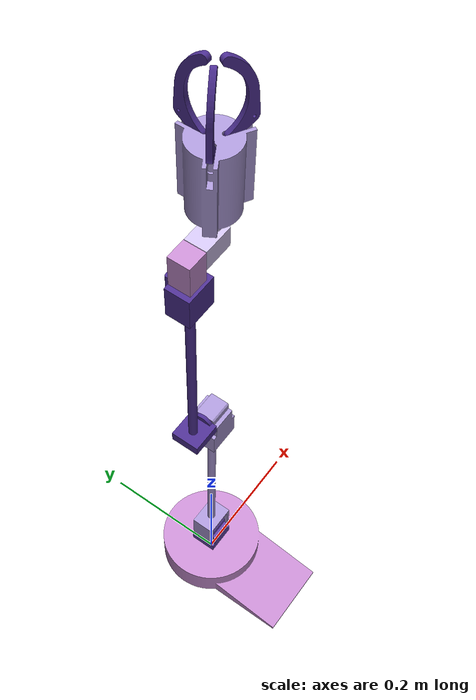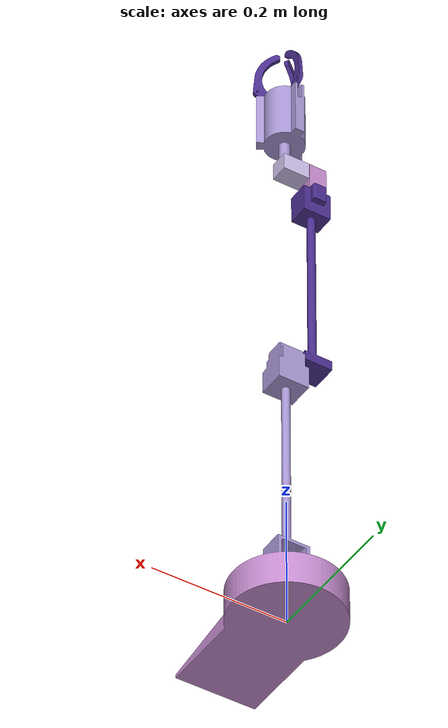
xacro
<?xml version="1.0"?>
<robot xmlns:xacro="http://www.ros.org/wiki/xacro" name="gripperbot">
    <xacro:arg name="initial_positions_file" default="initial_positions.yaml" />

    <!-- Import gripperbot urdf file -->
    <xacro:include filename="$(find gripperbot_description)/urdf/gripperbot.urdf.xacro" />

    <!-- Import control_xacro -->
    <xacro:include filename="gripperbot.ros2_control.xacro" />

    <xacro:gripperbot_ros2_control name="FakeSystem" initial_positions_file="$(arg initial_positions_file)"/>

</robot>

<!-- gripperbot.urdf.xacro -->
<!-- Generated using onshape-to-robot -->
<!-- Onshape document_id: 862e8c6c3191e2050c2f0c77 -->

<robot name="gripperbot" xmlns:xacro="http://ros.org/wiki/xacro">

    <xacro:include filename="modules/arm.xacro" />
    <xacro:include filename="modules/gripper.xacro" />

    <!-- GOOD PRACTICE TO PUT THE JOINTS BETWEEN ARM AND GRIPPER HERE-->
    <!-- Joint from wrist3_tool_link to gripper_body_link -->
    <joint name="gripper_to_arm_joint" type="continuous">
        <origin xyz="-4.34174e-15 -0.0145 0.028" rpy="-1.5708 -1.5708 0"/>
        <parent link="wrist3_tool_link"/>
        <child link="gripper_body_link"/>
        <axis xyz="0 0 1"/>
        <limit effort="100" velocity="100"/>
    </joint>

</robot>

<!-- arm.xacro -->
<!-- Generated using onshape-to-robot -->
<!-- Onshape document_id: 862e8c6c3191e2050c2f0c77 -->

<robot xmlns:xacro="http://ros.org/wiki/xacro">

<!-- ============================================ LINKS ================================================ -->

 <!-- Link base_link -->
  <link name="base_link">
    <inertial>
      <origin xyz="1.14227e-09 -0.0149262 0.0224093" rpy="0 0 0"/>
      <mass value="8.03176"/>
      <inertia ixx="0.0250449" ixy="-3.29178e-09" ixz="-4.24446e-10" iyy="0.0142937" iyz="-0.00185524" izz="0.0358871"/>
    </inertial>
    <visual>
      <origin xyz="0 0 0" rpy="0 -0 0"/>
      <geometry>
        <mesh filename="package://gripperbot_description/assets/arm/base_link.stl"/>
      </geometry>
      <material name="base_link_material">
        <color rgba="0.764706 0.545098 0.803922 1"/>
      </material>
    </visual>
    <collision>
      <origin xyz="0 0 0" rpy="0 -0 0"/>
      <geometry>
        <mesh filename="package://gripperbot_description/assets/arm/base_link.stl"/>
      </geometry>
    </collision>
  </link>
  <!-- END Link base_link -->

  <!-- Link shoulder_link -->
  <link name="shoulder_link">
    <inertial>
      <origin xyz="6.41216e-19 -1.66263e-18 -0.0210225" rpy="0 0 0"/>
      <mass value="0.186823"/>
      <inertia ixx="5.6668e-05" ixy="8.77202e-21" ixz="3.67806e-24" iyy="5.84165e-05" iyz="1.13905e-23" izz="4.78827e-05"/>
    </inertial>
    <visual>
      <origin xyz="3.85186e-34 0 -6.93889e-18" rpy="-3.14159 -3.51796e-20 8.32667e-17"/>
      <geometry>
        <mesh filename="package://gripperbot_description/assets/arm/shoulder_link.stl"/>
      </geometry>
      <material name="shoulder_link_material">
        <color rgba="0.368627 0.25098 0.643137 1"/>
      </material>
    </visual>
    <collision>
      <origin xyz="3.85186e-34 0 -6.93889e-18" rpy="-3.14159 -3.51796e-20 8.32667e-17"/>
      <geometry>
        <mesh filename="package://gripperbot_description/assets/arm/shoulder_link.stl"/>
      </geometry>
    </collision>
  </link>
  <!-- END Link shoulder_link -->

  <!-- Link upperarm_link -->
  <link name="upperarm_link">
    <inertial>
      <origin xyz="-3.93686e-05 0.101925 0.019" rpy="0 0 0"/>
      <mass value="0.158267"/>
      <inertia ixx="0.00150665" ixy="5.68203e-07" ixz="2.2488e-19" iyy="3.55793e-05" iyz="-3.04272e-19" izz="0.00148737"/>
    </inertial>
    <visual>
      <origin xyz="-1.236e-05 0.032 0.019" rpy="-2.19641 -1.57079 0.626"/>
      <geometry>
        <mesh filename="package://gripperbot_description/assets/arm/upperarm_link.stl"/>
      </geometry>
      <material name="upperarm_link_material">
        <color rgba="0.654902 0.584314 0.823529 1"/>
      </material>
    </visual>
    <collision>
      <origin xyz="-1.236e-05 0.032 0.019" rpy="-2.19641 -1.57079 0.626"/>
      <geometry>
        <mesh filename="package://gripperbot_description/assets/arm/upperarm_link.stl"/>
      </geometry>
    </collision>
  </link>
  <!-- END Link upperarm_link -->

  <!-- Link elbow_link -->
  <link name="elbow_link">
    <inertial>
      <origin xyz="-5.48603e-05 2.19372e-05 -0.0299903" rpy="0 0 0"/>
      <mass value="0.298533"/>
      <inertia ixx="0.00014186" ixy="6.3472e-09" ixz="-8.16051e-07" iyy="0.000147003" iyz="2.05859e-07" izz="8.21563e-05"/>
    </inertial>
    <visual>
      <origin xyz="8.69633e-19 3.56431e-18 1.66533e-16" rpy="3.14159 2.42999e-17 -2.41063e-17"/>
      <geometry>
        <mesh filename="package://gripperbot_description/assets/arm/elbow_link.stl"/>
      </geometry>
      <material name="elbow_link_material">
        <color rgba="0.654902 0.584314 0.823529 1"/>
      </material>
    </visual>
    <collision>
      <origin xyz="8.69633e-19 3.56431e-18 1.66533e-16" rpy="3.14159 2.42999e-17 -2.41063e-17"/>
      <geometry>
        <mesh filename="package://gripperbot_description/assets/arm/elbow_link.stl"/>
      </geometry>
    </collision>
  </link>
  <!-- END Link elbow_link -->

  <!-- Link forearm_link -->
  <link name="forearm_link">
    <inertial>
      <origin xyz="8.83279e-17 -0.0729009 0.0208966" rpy="0 0 0"/>
      <mass value="0.158134"/>
      <inertia ixx="0.00123935" ixy="-2.79266e-20" ixz="3.4357e-19" iyy="2.32886e-05" iyz="1.84844e-05" izz="0.00123694"/>
    </inertial>
    <visual>
      <origin xyz="8.4622e-17 3.33067e-16 1.76942e-16" rpy="1.5708 1.5708 0"/>
      <geometry>
        <mesh filename="package://gripperbot_description/assets/arm/forearm_link.stl"/>
      </geometry>
      <material name="forearm_link_material">
        <color rgba="0.294118 0.180392 0.560784 1"/>
      </material>
    </visual>
    <collision>
      <origin xyz="8.4622e-17 3.33067e-16 1.76942e-16" rpy="1.5708 1.5708 0"/>
      <geometry>
        <mesh filename="package://gripperbot_description/assets/arm/forearm_link.stl"/>
      </geometry>
    </collision>
  </link>
  <!-- END Link forearm_link -->

  <!-- Link wrist1_link -->
  <link name="wrist1_link">
    <inertial>
      <origin xyz="8.41318e-17 -0.00149769 -0.02306" rpy="0 0 0"/>
      <mass value="0.182387"/>
      <inertia ixx="4.96843e-05" ixy="3.37872e-20" ixz="2.50108e-20" iyy="5.51546e-05" iyz="-2.74955e-06" izz="4.37886e-05"/>
    </inertial>
    <visual>
      <origin xyz="1.04083e-16 4.08473e-17 1.11022e-16" rpy="3.14159 -3.28226e-16 3.20794e-16"/>
      <geometry>
        <mesh filename="package://gripperbot_description/assets/arm/wrist1_link.stl"/>
      </geometry>
      <material name="wrist1_link_material">
        <color rgba="0.294118 0.180392 0.560784 1"/>
      </material>
    </visual>
    <collision>
      <origin xyz="1.04083e-16 4.08473e-17 1.11022e-16" rpy="3.14159 -3.28226e-16 3.20794e-16"/>
      <geometry>
        <mesh filename="package://gripperbot_description/assets/arm/wrist1_link.stl"/>
      </geometry>
    </collision>
  </link>
  <!-- END Link wrist1_link -->

  <!-- Link wrist2_link -->
  <link name="wrist2_link">
    <inertial>
      <origin xyz="-0.00251186 6.71599e-18 0.0190119" rpy="0 0 0"/>
      <mass value="0.0859157"/>
      <inertia ixx="1.77917e-05" ixy="1.82916e-19" ixz="-2.99993e-07" iyy="1.77246e-05" iyz="1.27323e-20" izz="1.1138e-05"/>
    </inertial>
    <visual>
      <origin xyz="1.249e-16 0.0075 -0.001" rpy="-3.14159 -1.21316e-15 1.47004e-15"/>
      <geometry>
        <mesh filename="package://gripperbot_description/assets/arm/wrist2_link.stl"/>
      </geometry>
      <material name="wrist2_link_material">
        <color rgba="0.764706 0.545098 0.803922 1"/>
      </material>
    </visual>
    <collision>
      <origin xyz="1.249e-16 0.0075 -0.001" rpy="-3.14159 -1.21316e-15 1.47004e-15"/>
      <geometry>
        <mesh filename="package://gripperbot_description/assets/arm/wrist2_link.stl"/>
      </geometry>
    </collision>
  </link>
  <!-- END Link wrist2_link -->

  <!-- Link wrist3_tool_link -->
  <link name="wrist3_tool_link">
    <inertial>
      <origin xyz="1.23254e-18 0.00173675 0.0180397" rpy="0 0 0"/>
      <mass value="0.0818333"/>
      <inertia ixx="1.58518e-05" ixy="1.1494e-19" ixz="4.04749e-20" iyy="1.58958e-05" iyz="2.99003e-07" izz="1.06276e-05"/>
    </inertial>
    <visual>
      <origin xyz="-0.0075 0.029 -0.013" rpy="-1.5708 -1.5708 0"/>
      <geometry>
        <mesh filename="package://gripperbot_description/assets/arm/wrist3_link.stl"/>
      </geometry>
      <material name="wrist3_link_material">
        <color rgba="0.8 0.74902 0.913725 1"/>
      </material>
    </visual>
    <collision>
      <origin xyz="-0.0075 0.029 -0.013" rpy="-1.5708 -1.5708 0"/>
      <geometry>
        <mesh filename="package://gripperbot_description/assets/arm/wrist3_link.stl"/>
      </geometry>
    </collision>
  </link>
  <!-- END Link wrist3_tool_link -->

<!-- =======================================  JOINTS ============================================= -->

 <!-- Joint from wrist2_link to wrist3_tool_link -->
  <joint name="wrist2_joint" type="revolute">
    <origin xyz="0.01375 2.45572e-17 0.028" rpy="-1.5708 7.43214e-16 -1.5708"/>
    <parent link="wrist2_link"/>
    <child link="wrist3_tool_link"/>
    <axis xyz="0 0 1"/>
    <limit effort="100" velocity="100" lower="-2.00" upper="2.00"/>
  </joint>

  <!-- Joint from wrist1_link to wrist2_link -->
  <joint name="wrist1_joint" type="continuous">
    <origin xyz="8.32667e-17 4.82199e-17 -0.049" rpy="3.14159 -2.66993e-16 3.20794e-16"/>
    <parent link="wrist1_link"/>
    <child link="wrist2_link"/>
    <axis xyz="0 0 1"/>
    <limit effort="100" velocity="100"/>
  </joint>

  <!-- Joint from forearm_link to wrist1_link -->
  <joint name="forearm_to_wrist_joint" type="fixed">
    <origin xyz="8.31583e-17 -0.2685 0.0225" rpy="-1.5708 1.5708 0"/>
    <parent link="forearm_link"/>
    <child link="wrist1_link"/>
    <axis xyz="0 0 1"/>
    <limit effort="100" velocity="100"/>
  </joint>

  <!-- Joint from elbow_link to forearm_link -->
  <joint name="elbow_joint" type="revolute">
    <origin xyz="-0.019 0.00019993 -0.05625" rpy="1.5708 -1.72647e-17 -1.57079"/>
    <parent link="elbow_link"/>
    <child link="forearm_link"/>
    <axis xyz="0 0 1"/>
    <limit effort="100" velocity="100" lower="-3" upper="3"/>
  </joint>

  <!-- Joint from upperarm_link to elbow_link -->
  <joint name="upperarm_to_elbow_joint" type="fixed">
    <origin xyz="-0.000118579 0.307 0.019" rpy="1.5708 -1.57079 0.000386251"/>
    <parent link="upperarm_link"/>
    <child link="elbow_link"/>
    <axis xyz="0 0 1"/>
    <limit effort="100" velocity="100"/>
  </joint>

  <!-- Joint from shoulder_link to upperarm_link -->
  <joint name="shoulder_joint" type="revolute">
    <origin xyz="-0.019 -6.52428e-18 -0.03625" rpy="-1.5708 1.07155e-19 -1.5708"/>
    <parent link="shoulder_link"/>
    <child link="upperarm_link"/>
    <axis xyz="0 0 1"/>
    <limit effort="100" velocity="100" lower="-1.5708" upper="1.5708"/>
  </joint>

  <!-- Joint from base_link to shoulder_link -->
  <joint name="waist_joint" type="continuous">
    <origin xyz="0 4.89859e-18 0.0495" rpy="3.14159 -0 0"/>
    <parent link="base_link"/>
    <child link="shoulder_link"/>
    <axis xyz="0 0 1"/>
    <limit effort="100" velocity="100"/>
  </joint>

</robot>

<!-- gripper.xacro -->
<!-- Generated using onshape-to-robot -->
<!-- Onshape https://cad.onshape.com/documents/862e8c6c3191e2050c2f0c77/w/c0f9f357af393f0842a7b7ce/e/4f23dfc971c8123d3ac0b54e -->

<robot xmlns:xacro="http://ros.org/wiki/xacro">

<!-- ======================================= LINKS ============================================ -->

  <!-- Link gripper_body_link -->
  <link name="gripper_body_link">
    <inertial>
      <origin xyz="-4.05275e-10 8.37288e-10 -0.0687623" rpy="0 0 0"/>
      <mass value="0.125198"/>
      <inertia ixx="0.00016856" ixy="-6.41053e-13" ixz="-1.50248e-12" iyy="0.00016856" iyz="4.56882e-12" izz="9.25176e-05"/>
    </inertial>
    <visual>
      <origin xyz="0 -0.1361 -0.054" rpy="3.14159 -1.51858e-31 -7.13552e-32"/>
      <geometry>
        <mesh filename="package://gripperbot_description/assets/gripper/gripper_body_link.stl"/>
      </geometry>
      <material name="gripper_body_link_material">
        <color rgba="0.654902 0.584314 0.823529 1"/>
      </material>
    </visual>
    <collision>
      <origin xyz="0 -0.1361 -0.054" rpy="3.14159 -1.51858e-31 -7.13552e-32"/>
      <geometry>
        <mesh filename="package://gripperbot_description/assets/gripper/gripper_body_link.stl"/>
      </geometry>
    </collision>
  </link>
  <!-- END Link gripper_body_link -->

  <!-- Link gripper_arm_link_1 -->
  <link name="gripper_arm_link_1">
    <inertial>
      <origin xyz="0.0329865 0.0247847 0.003" rpy="0 0 0"/>
      <mass value="0.00753434"/>
      <inertia ixx="4.33594e-06" ixy="-2.13713e-06" ixz="3.39419e-15" iyy="1.76823e-06" iyz="1.34526e-14" izz="6.05896e-06"/>
    </inertial>
    <visual>
      <origin xyz="0 0 -0.004" rpy="-4.80254e-18 -2.92476e-18 5.32903e-17"/>
      <geometry>
        <mesh filename="package://gripperbot_description/assets/gripper/gripper_arm_link.stl"/>
      </geometry>
      <material name="gripper_arm_link_1_material">
        <color rgba="0.294118 0.180392 0.560784 1"/>
      </material>
    </visual>
    <collision>
      <origin xyz="0 0 -0.004" rpy="-4.80254e-18 -2.92476e-18 5.32903e-17"/>
      <geometry>
        <mesh filename="package://gripperbot_description/assets/gripper/gripper_arm_link.stl"/>
      </geometry>
    </collision>
  </link>
  <!-- END Link gripper_arm_link_1 -->

  <!-- Link gripper_arm_link_2 -->
  <link name="gripper_arm_link_2">
    <inertial>
      <origin xyz="0.0329865 0.0247847 -0.003" rpy="0 0 0"/>
      <mass value="0.00753434"/>
      <inertia ixx="4.33594e-06" ixy="-2.13713e-06" ixz="3.39419e-15" iyy="1.76823e-06" iyz="1.34526e-14" izz="6.05896e-06"/>
    </inertial>
    <visual>
      <origin xyz="0 -1.11022e-16 -0.01" rpy="6.05967e-17 6.39472e-17 -1.15544e-17"/>
      <geometry>
        <mesh filename="package://gripperbot_description/assets/gripper/gripper_arm_link.stl"/>
      </geometry>
      <material name="gripper_arm_link_2_material">
        <color rgba="0.294118 0.180392 0.560784 1"/>
      </material>
    </visual>
    <collision>
      <origin xyz="0 -1.11022e-16 -0.01" rpy="6.05967e-17 6.39472e-17 -1.15544e-17"/>
      <geometry>
        <mesh filename="package://gripperbot_description/assets/gripper/gripper_arm_link.stl"/>
      </geometry>
    </collision>
  </link>
  <!-- END Link gripper_arm_link_2 -->

   <!-- Link gripper_arm_link_3 -->
  <link name="gripper_arm_link_3">
    <inertial>
      <origin xyz="0.0329865 0.0247847 -0.003" rpy="0 0 0"/>
      <mass value="0.00753434"/>
      <inertia ixx="4.33594e-06" ixy="-2.13713e-06" ixz="3.39419e-15" iyy="1.76823e-06" iyz="1.34526e-14" izz="6.05896e-06"/>
    </inertial>
    <visual>
      <origin xyz="1.11022e-16 0 -0.01" rpy="2.20238e-31 9.78201e-31 -6.16684e-17"/>
      <geometry>
        <mesh filename="package://gripperbot_description/assets/gripper/gripper_arm_link.stl"/>
      </geometry>
      <material name="gripper_arm_link_3_material">
        <color rgba="0.294118 0.180392 0.560784 1"/>
      </material>
    </visual>
    <collision>
      <origin xyz="1.11022e-16 0 -0.01" rpy="2.20238e-31 9.78201e-31 -6.16684e-17"/>
      <geometry>
        <mesh filename="package://gripperbot_description/assets/gripper/gripper_arm_link.stl"/>
      </geometry>
    </collision>
  </link>
  <!-- END Link gripper_arm_link_3 -->

<!-- =================================== JOINTS ===================================== -->

  <!-- Joint from gripper_body_link to gripper_arm_link_1 -->
  <joint name="arm1_to_gripperbody_joint" type="revolute">
    <origin xyz="-0.0116776 0.0102062 -0.1085" rpy="-1.5708 0.611 2.61799"/>
    <parent link="gripper_body_link"/>
    <child link="gripper_arm_link_1"/>
    <axis xyz="0 0 1"/>
    <limit effort="100" velocity="100" lower="-0.791" upper="1.06581e-14"/>
  </joint>

  <!-- Joint from gripper_body_link to gripper_arm_link_2 -->
  <joint name="arm2_to_gripperbody_joint" type="revolute">
    <origin xyz="0.0116776 0.0102062 -0.1085" rpy="-1.5708 0.611 0.523599"/>
    <parent link="gripper_body_link"/>
    <child link="gripper_arm_link_2"/>
    <axis xyz="0 0 1"/>
    <limit effort="100" velocity="100" lower="-0.791" upper="0"/>
    <mimic joint="arm1_to_gripperbody_joint" multiplier="1" offset="0"/>
  </joint>

  <!-- Joint from gripper_body_link to gripper_arm_link_3 -->
  <joint name="arm3_to_gripperbody_joint" type="revolute">
    <origin xyz="0.003 -0.0152162 -0.1085" rpy="-1.5708 0.611 -1.5708"/>
    <parent link="gripper_body_link"/>
    <child link="gripper_arm_link_3"/>
    <axis xyz="0 0 1"/>
    <limit effort="100" velocity="100" lower="-0.791" upper="0"/>
    <mimic joint="arm1_to_gripperbody_joint" multiplier="1" offset="0"/>
  </joint>

</robot>
